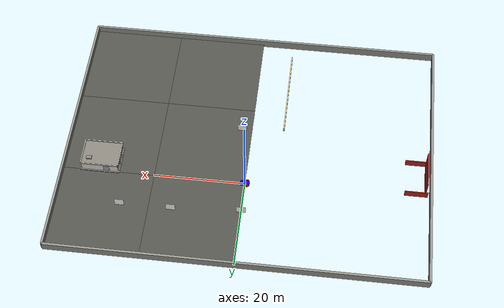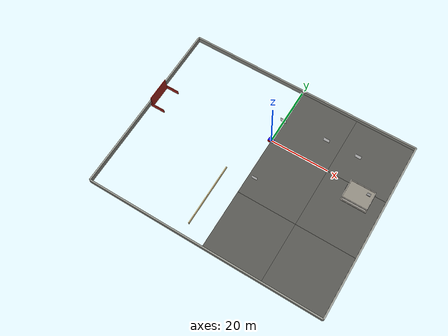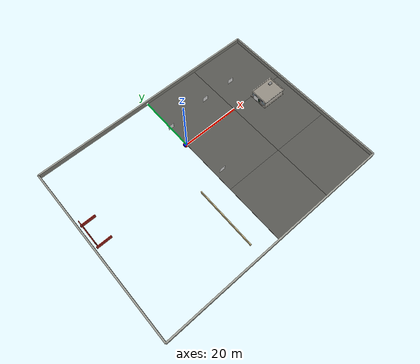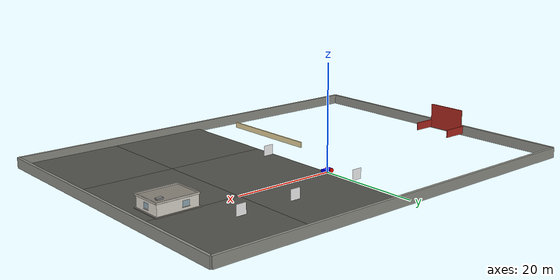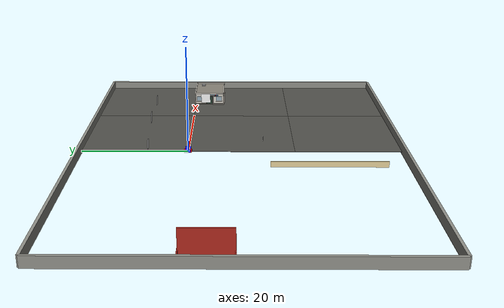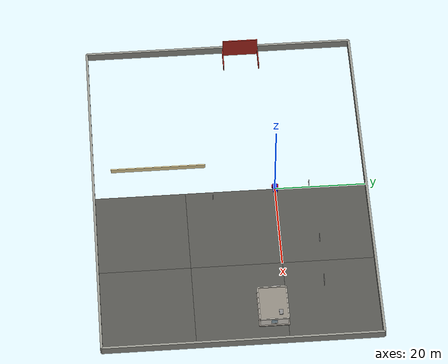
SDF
<sdf version="1.9">
 <world name="default">
  <model name="vehicle_blue" canonical_link="chassis">
   <pose relative_to="world">0.0 0.0 0 0 0 0</pose>
   <frame name="lidar_frame" attached_to="chassis"><pose>0.85 0 0.55 0 0 0</pose></frame>
   <link name="chassis">
    <pose relative_to="__model__">0.0 0.0 0.4 0 0 0</pose>
    <inertial>
     <mass>1.14395</mass>
     <inertia>
      <ixx>0.095329</ixx>
      <ixy>0</ixy>
      <ixz>0</ixz>
      <iyy>0.381317</iyy>
      <iyz>0</iyz>
      <izz>0.476646</izz>
     </inertia>
    </inertial>
    <visual name="visual">
     <geometry><box><size>2.0 1.0 0.5</size></box></geometry>
     <material>
      <ambient>0.0 0.0 1.0 1</ambient>
      <diffuse>0.0 0.0 1.0 1</diffuse>
      <specular>0.0 0.0 1.0 1</specular>
     </material>
    </visual>
    <collision name="collision"><geometry><box><size>2.0 1.0 0.5</size></box></geometry></collision>
    <sensor name="gpu_lidar" type="gpu_lidar">
     <pose relative_to="lidar_frame">0 0 0 0 0 0</pose>
     <topic>scan</topic>
     <update_rate>10</update_rate>
     <ray>
      <scan>
       <horizontal>
        <samples>360</samples>
        <resolution>1</resolution>
        <min_angle>-3.14159</min_angle>
        <max_angle>3.14159</max_angle>
       </horizontal>
       <vertical>
        <samples>1</samples>
        <resolution>0.01</resolution>
        <min_angle>0</min_angle>
        <max_angle>0</max_angle>
       </vertical>
      </scan>
      <range><min>0.08</min><max>30.0</max><resolution>0.01</resolution></range>
     </ray>
     <always_on>1</always_on>
     <visualize>true</visualize>
    </sensor>
    <sensor name="front_cam" type="camera">
     <pose>0.9  0  0.0  0  -0.10  0</pose>
     <update_rate>30</update_rate>
     <camera>
      <horizontal_fov>1.05</horizontal_fov>
      <image><width>1280</width><height>720</height><format>R8G8B8</format></image>
     </camera>
     <always_on>true</always_on>
    </sensor>
    <sensor name="imu_sensor" type="imu">
     <always_on>1</always_on>
     <update_rate>50</update_rate>
     <visualize>true</visualize>
     <topic>imu</topic>
    </sensor>
   </link>
   <link name="left_wheel">
    <pose relative_to="chassis">-0.5 0.6 0 -1.5707 0 0</pose>
    <inertial>
     <mass>1</mass>
     <inertia><ixx>0.043333</ixx><ixy>0</ixy><ixz>0</ixz><iyy>0.043333</iyy><iyz>0</iyz><izz>0.08</izz></inertia>
    </inertial>
    <visual name="visual">
     <geometry><cylinder><radius>0.4</radius><length>0.2</length></cylinder></geometry>
     <material>
      <ambient>1.0 0.0 0.0 1</ambient>
      <diffuse>1.0 0.0 0.0 1</diffuse>
      <specular>1.0 0.0 0.0 1</specular>
     </material>
    </visual>
    <collision name="collision">
     <geometry><cylinder><radius>0.4</radius><length>0.2</length></cylinder></geometry>
    </collision>
   </link>
   <link name="right_wheel">
    <pose relative_to="chassis">-0.5 -0.6 0 -1.5707 0 0</pose>
    <inertial>
     <mass>1</mass>
     <inertia><ixx>0.043333</ixx><ixy>0</ixy><ixz>0</ixz><iyy>0.043333</iyy><iyz>0</iyz><izz>0.08</izz></inertia>
    </inertial>
    <visual name="visual">
     <geometry><cylinder><radius>0.4</radius><length>0.2</length></cylinder></geometry>
     <material>
      <ambient>1.0 0.0 0.0 1</ambient>
      <diffuse>1.0 0.0 0.0 1</diffuse>
      <specular>1.0 0.0 0.0 1</specular>
     </material>
    </visual>
    <collision name="collision">
     <geometry><cylinder><radius>0.4</radius><length>0.2</length></cylinder></geometry>
    </collision>
   </link>
   <frame name="caster_frame" attached_to="chassis"><pose>0.8 0 -0.2 0 0 0</pose></frame>
   <link name="caster">
    <pose relative_to="caster_frame"/>
    <inertial>
     <mass>1</mass>
     <inertia><ixx>0.016</ixx><ixy>0</ixy><ixz>0</ixz><iyy>0.016</iyy><iyz>0</iyz><izz>0.016</izz></inertia>
    </inertial>
    <visual name="visual">
     <geometry><sphere><radius>0.2</radius></sphere></geometry>
     <material>
      <ambient>0.0 1 0.0 1</ambient>
      <diffuse>0.0 1 0.0 1</diffuse>
      <specular>0.0 1 0.0 1</specular>
     </material>
    </visual>
    <collision name="collision"><geometry><sphere><radius>0.2</radius></sphere></geometry></collision>
   </link>
   <joint name="left_wheel_joint" type="revolute">
    <pose relative_to="left_wheel"/>
    <parent>chassis</parent>
    <child>left_wheel</child>
    <axis>
     <xyz expressed_in="__model__">0 1 0</xyz>
     <limit><lower>-1.79769e+308</lower><upper>1.79769e+308</upper></limit>
    </axis>
   </joint>
   <joint name="right_wheel_joint" type="revolute">
    <pose relative_to="right_wheel"/>
    <parent>chassis</parent>
    <child>right_wheel</child>
    <axis>
     <xyz expressed_in="__model__">0 1 0</xyz>
     <limit><lower>-1.79769e+308</lower><upper>1.79769e+308</upper></limit>
    </axis>
   </joint>
   <joint name="caster_wheel" type="ball"><parent>chassis</parent><child>caster</child></joint>
   <plugin filename="gz-sim-diff-drive-system" name="gz::sim::systems::DiffDrive">
    <left_joint>left_wheel_joint</left_joint>
    <right_joint>right_wheel_joint</right_joint>
    <wheel_separation>1.2</wheel_separation>
    <wheel_radius>0.4</wheel_radius>
    <odom_publish_frequency>30.0</odom_publish_frequency>
    <topic>cmd_vel</topic>
    <max_linear_velocity>3.0</max_linear_velocity>
    <max_angular_velocity>3.0</max_angular_velocity>
    <max_linear_acceleration>5.0</max_linear_acceleration>
    <max_angular_acceleration>5.0</max_angular_acceleration>
   </plugin>
   <plugin name="gz::sim::systems::JointStatePublisher" filename="gz-sim-joint-state-publisher-system">
    <publish_rate>50</publish_rate>
   </plugin>
   <plugin filename="ignition-gazebo-sensors-system" name="ignition::gazebo::systems::Sensors">
    <render_engine>ogre2</render_engine>
   </plugin>
  </model>
  <include><name>qr4_house_1</name><uri>model://qr4</uri><pose>0 7.5 1.5 1.5708 0 0</pose></include>
  <include><name>qr5_house_2</name><uri>model://qr5</uri><pose>15 8.5 1.5 1.5708 0 0</pose></include>
  <include><name>qr6_house_3</name><uri>model://qr6</uri><pose>26.0633 8.5 1.5 1.5708 0 0</pose></include>
  <include><name>qr7_fast_food</name><uri>model://qr7</uri><pose>2.2 -14 1.5 -1.5708 0 0</pose></include>
  <include>
   <name>qr10_community_clinic</name>
   <uri>model://qr10</uri>
   <pose>27.5 -2.2 1.5 0 -1.5708 0</pose>
  </include>
  <model name="asphalt_plane">
   <static>1</static>
   <link name="link">
    <collision name="collision"><geometry><box><size>20 20 0.1</size></box></geometry></collision>
    <visual name="visual">
     <cast_shadows>0</cast_shadows>
     <geometry><box><size>20 20 0.1</size></box></geometry>
     <material>
      <ambient>0.18 0.18 0.17 1</ambient>
      <diffuse>0.32 0.32 0.30 1</diffuse>
      <specular>0.05 0.05 0.05 1</specular>
      <emissive>0 0 0 1</emissive>
     </material>
    </visual>
    <velocity_decay><linear>0</linear><angular>0</angular></velocity_decay>
   </link>
   <pose>10 10 0 0 0 0</pose>
  </model>
  <model name="asphalt_plane_0">
   <static>1</static>
   <link name="link">
    <collision name="collision"><geometry><box><size>20 20 0.1</size></box></geometry></collision>
    <visual name="visual">
     <cast_shadows>0</cast_shadows>
     <geometry><box><size>20 20 0.1</size></box></geometry>
     <material>
      <ambient>0.18 0.18 0.17 1</ambient>
      <diffuse>0.32 0.32 0.30 1</diffuse>
      <specular>0.05 0.05 0.05 1</specular>
      <emissive>0 0 0 1</emissive>
     </material>
    </visual>
    <velocity_decay><linear>0</linear><angular>0</angular></velocity_decay>
   </link>
   <pose>10 -10 0 0 0 0</pose>
  </model>
  <model name="asphalt_plane_4">
   <static>1</static>
   <link name="link">
    <collision name="collision"><geometry><box><size>20 20 0.1</size></box></geometry></collision>
    <visual name="visual">
     <cast_shadows>0</cast_shadows>
     <geometry><box><size>20 20 0.1</size></box></geometry>
     <material>
      <ambient>0.18 0.18 0.17 1</ambient>
      <diffuse>0.32 0.32 0.30 1</diffuse>
      <specular>0.05 0.05 0.05 1</specular>
      <emissive>0 0 0 1</emissive>
     </material>
    </visual>
    <velocity_decay><linear>0</linear><angular>0</angular></velocity_decay>
   </link>
   <pose>10 -30 0 0 0 0</pose>
  </model>
  <model name="asphalt_plane_5">
   <static>1</static>
   <link name="link">
    <collision name="collision"><geometry><box><size>20 20 0.1</size></box></geometry></collision>
    <visual name="visual">
     <cast_shadows>0</cast_shadows>
     <geometry><box><size>20 20 0.1</size></box></geometry>
     <material>
      <ambient>0.18 0.18 0.17 1</ambient>
      <diffuse>0.32 0.32 0.30 1</diffuse>
      <specular>0.05 0.05 0.05 1</specular>
      <emissive>0 0 0 1</emissive>
     </material>
    </visual>
    <velocity_decay><linear>0</linear><angular>0</angular></velocity_decay>
   </link>
   <pose>30 -30 0 0 0 0</pose>
  </model>
  <model name="asphalt_plane_6">
   <static>1</static>
   <link name="link">
    <collision name="collision"><geometry><box><size>20 20 0.1</size></box></geometry></collision>
    <visual name="visual">
     <cast_shadows>0</cast_shadows>
     <geometry><box><size>20 20 0.1</size></box></geometry>
     <material>
      <ambient>0.18 0.18 0.17 1</ambient>
      <diffuse>0.32 0.32 0.30 1</diffuse>
      <specular>0.05 0.05 0.05 1</specular>
      <emissive>0 0 0 1</emissive>
     </material>
    </visual>
    <velocity_decay><linear>0</linear><angular>0</angular></velocity_decay>
   </link>
   <pose>30 10 0 0 0 0</pose>
  </model>
  <model name="asphalt_plane_7">
   <static>1</static>
   <link name="link">
    <collision name="collision"><geometry><box><size>20 20 0.1</size></box></geometry></collision>
    <visual name="visual">
     <cast_shadows>0</cast_shadows>
     <geometry><box><size>20 20 0.1</size></box></geometry>
     <material>
      <ambient>0.18 0.18 0.17 1</ambient>
      <diffuse>0.32 0.32 0.30 1</diffuse>
      <specular>0.05 0.05 0.05 1</specular>
      <emissive>0 0 0 1</emissive>
     </material>
    </visual>
    <velocity_decay><linear>0</linear><angular>0</angular></velocity_decay>
   </link>
   <pose>30 -10 0 0 0 0</pose>
  </model>
  <model name="Docking Station Wall">
   <static>1</static>
   <link name="link">
    <collision name="collision">
     <pose>-39 -5 2.55 0 0 0</pose>
     <geometry><box><size>0.2 8 5.0</size></box></geometry>
    </collision>
    <collision name="left_side_wall_collision">
     <pose>-37 -1 0.85 0 0 0</pose>
     <geometry><box><size>5.0 0.2 1.6</size></box></geometry>
    </collision>
    <collision name="right_side_wall_collision">
     <pose>-37 -9 0.85 0 0 0</pose>
     <geometry><box><size>5.0 0.2 1.6</size></box></geometry>
    </collision>
    <visual name="visual">
     <pose>-39 -5 2.55 0 0 0</pose>
     <geometry><box><size>0.2 8 5.0</size></box></geometry>
     <material>
      <ambient>0.35 0.08 0.06 1</ambient>
      <diffuse>0.70 0.16 0.12 1</diffuse>
      <specular>0.10 0.04 0.03 1</specular>
      <emissive>0 0 0 1</emissive>
     </material>
    </visual>
    <visual name="left_side_wall_visual">
     <pose>-37 -1 0.85 0 0 0</pose>
     <geometry><box><size>5.0 0.2 1.6</size></box></geometry>
     <material>
      <ambient>0.35 0.08 0.06 1</ambient>
      <diffuse>0.70 0.16 0.12 1</diffuse>
      <specular>0.10 0.04 0.03 1</specular>
      <emissive>0 0 0 1</emissive>
     </material>
    </visual>
    <visual name="right_side_wall_visual">
     <pose>-37 -9 0.85 0 0 0</pose>
     <geometry><box><size>5.0 0.2 1.6</size></box></geometry>
     <material>
      <ambient>0.35 0.08 0.06 1</ambient>
      <diffuse>0.70 0.16 0.12 1</diffuse>
      <specular>0.10 0.04 0.03 1</specular>
      <emissive>0 0 0 1</emissive>
     </material>
    </visual>
   </link>
  </model>
  <model name="boundary_walls">
   <static>1</static>
   <link name="link">
    <collision name="north_wall_collision">
     <pose>0 20.25 0.55 0 0 0</pose>
     <geometry><box><size>80.5 0.5 2.0</size></box></geometry>
    </collision>
    <collision name="south_wall_collision">
     <pose>0 -40.25 0.55 0 0 0</pose>
     <geometry><box><size>80.5 0.5 2.0</size></box></geometry>
    </collision>
    <collision name="east_wall_collision">
     <pose>40.25 -10 0.55 0 0 0</pose>
     <geometry><box><size>0.5 60.5 2.0</size></box></geometry>
    </collision>
    <collision name="west_wall_collision">
     <pose>-40.25 -10 0.55 0 0 0</pose>
     <geometry><box><size>0.5 60.5 2.0</size></box></geometry>
    </collision>
    <visual name="north_wall_visual">
     <pose>0 20.25 0.55 0 0 0</pose>
     <geometry><box><size>80.5 0.5 2.0</size></box></geometry>
     <material>
      <ambient>0.35 0.35 0.33 1</ambient>
      <diffuse>0.58 0.58 0.55 1</diffuse>
      <specular>0.08 0.08 0.08 1</specular>
      <emissive>0 0 0 1</emissive>
     </material>
    </visual>
    <visual name="south_wall_visual">
     <pose>0 -40.25 0.55 0 0 0</pose>
     <geometry><box><size>80.5 0.5 2.0</size></box></geometry>
     <material>
      <ambient>0.35 0.35 0.33 1</ambient>
      <diffuse>0.58 0.58 0.55 1</diffuse>
      <specular>0.08 0.08 0.08 1</specular>
      <emissive>0 0 0 1</emissive>
     </material>
    </visual>
    <visual name="east_wall_visual">
     <pose>40.25 -10 0.55 0 0 0</pose>
     <geometry><box><size>0.5 60.5 2.0</size></box></geometry>
     <material>
      <ambient>0.35 0.35 0.33 1</ambient>
      <diffuse>0.58 0.58 0.55 1</diffuse>
      <specular>0.08 0.08 0.08 1</specular>
      <emissive>0 0 0 1</emissive>
     </material>
    </visual>
    <visual name="west_wall_visual">
     <pose>-40.25 -10 0.55 0 0 0</pose>
     <geometry><box><size>0.5 60.5 2.0</size></box></geometry>
     <material>
      <ambient>0.35 0.35 0.33 1</ambient>
      <diffuse>0.58 0.58 0.55 1</diffuse>
      <specular>0.08 0.08 0.08 1</specular>
      <emissive>0 0 0 1</emissive>
     </material>
    </visual>
   </link>
  </model>
  <model name="gas_station_east_wall">
   <static>1</static>
   <pose>-7.0967 -25.64435 0.55 0 0 0</pose>
   <link name="link">
    <collision name="east_wall_collision">
     <geometry><box><size>0.25 21.0545 1.1</size></box></geometry>
    </collision>
    <visual name="east_wall_visual">
     <geometry><box><size>0.25 21.0545 1.1</size></box></geometry>
     <material>
      <ambient>0.46 0.42 0.32 1</ambient>
      <diffuse>0.92 0.84 0.62 1</diffuse>
      <specular>0.36 0.34 0.25 1</specular>
      <emissive>0.02 0.01 0 1</emissive>
     </material>
    </visual>
   </link>
  </model>
  <model name="community_clinic">
   <static>true</static>
   <pose>32.0 -3.0 0 0 0 3.14159</pose>
   <link name="clinic_link">
    <visual name="foundation_visual">
     <pose>0 0 0.1 0 0 0</pose>
     <geometry><box><size>8.6 6.6 0.2</size></box></geometry>
     <material>
      <ambient>0.45 0.43 0.40 1</ambient>
      <diffuse>0.50 0.48 0.45 1</diffuse>
      <specular>0.05 0.05 0.05 1</specular>
     </material>
    </visual>
    <collision name="foundation_collision">
     <pose>0 0 0.1 0 0 0</pose>
     <geometry><box><size>8.6 6.6 0.2</size></box></geometry>
    </collision>
    <visual name="building_visual">
     <pose>0 0 1.2 0 0 0</pose>
     <geometry><box><size>8.0 6.0 2.2</size></box></geometry>
     <material>
      <ambient>0.88 0.86 0.82 1</ambient>
      <diffuse>0.90 0.88 0.84 1</diffuse>
      <specular>0.04 0.04 0.04 1</specular>
     </material>
    </visual>
    <collision name="building_collision">
     <pose>0 0 1.2 0 0 0</pose>
     <geometry><box><size>8.0 6.0 2.2</size></box></geometry>
    </collision>
    <visual name="parapet_front">
     <pose>0 3.1 2.45 0 0 0</pose>
     <geometry><box><size>8.2 0.2 0.3</size></box></geometry>
     <material><ambient>0.80 0.78 0.74 1</ambient><diffuse>0.82 0.80 0.76 1</diffuse></material>
    </visual>
    <visual name="parapet_back">
     <pose>0 -3.1 2.45 0 0 0</pose>
     <geometry><box><size>8.2 0.2 0.3</size></box></geometry>
     <material><ambient>0.80 0.78 0.74 1</ambient><diffuse>0.82 0.80 0.76 1</diffuse></material>
    </visual>
    <visual name="parapet_left">
     <pose>-4.1 0 2.45 0 0 0</pose>
     <geometry><box><size>0.2 6.2 0.3</size></box></geometry>
     <material><ambient>0.80 0.78 0.74 1</ambient><diffuse>0.82 0.80 0.76 1</diffuse></material>
    </visual>
    <visual name="parapet_right">
     <pose>4.1 0 2.45 0 0 0</pose>
     <geometry><box><size>0.2 6.2 0.3</size></box></geometry>
     <material><ambient>0.80 0.78 0.74 1</ambient><diffuse>0.82 0.80 0.76 1</diffuse></material>
    </visual>
    <visual name="roof_slab">
     <pose>0 0 2.32 0 0 0</pose>
     <geometry><box><size>8.2 6.2 0.14</size></box></geometry>
     <material><ambient>0.52 0.50 0.46 1</ambient><diffuse>0.54 0.52 0.48 1</diffuse></material>
    </visual>
    <visual name="canopy_slab">
     <pose>3.6 0 2.05 0 0 0</pose>
     <geometry><box><size>1.2 2.4 0.12</size></box></geometry>
     <material><ambient>0.75 0.73 0.70 1</ambient><diffuse>0.77 0.75 0.72 1</diffuse></material>
    </visual>
    <visual name="canopy_pillar_left">
     <pose>4.05 0.85 1.05 0 0 0</pose>
     <geometry><box><size>0.15 0.15 2.1</size></box></geometry>
     <material><ambient>0.82 0.80 0.77 1</ambient><diffuse>0.84 0.82 0.79 1</diffuse></material>
    </visual>
    <visual name="canopy_pillar_right">
     <pose>4.05 -0.85 1.05 0 0 0</pose>
     <geometry><box><size>0.15 0.15 2.1</size></box></geometry>
     <material><ambient>0.82 0.80 0.77 1</ambient><diffuse>0.84 0.82 0.79 1</diffuse></material>
    </visual>
    <visual name="door_frame">
     <pose>4.02 0 1.0 0 0 0</pose>
     <geometry><box><size>0.06 1.5 2.05</size></box></geometry>
     <material><ambient>0.20 0.18 0.16 1</ambient><diffuse>0.22 0.20 0.18 1</diffuse></material>
    </visual>
    <visual name="door_left">
     <pose>4.04 0.30 0.95 0 0 0</pose>
     <geometry><box><size>0.05 0.62 1.90</size></box></geometry>
     <material><ambient>0.14 0.26 0.20 1</ambient><diffuse>0.16 0.28 0.22 1</diffuse></material>
    </visual>
    <visual name="door_right">
     <pose>4.04 -0.30 0.95 0 0 0</pose>
     <geometry><box><size>0.05 0.62 1.90</size></box></geometry>
     <material><ambient>0.14 0.26 0.20 1</ambient><diffuse>0.16 0.28 0.22 1</diffuse></material>
    </visual>
    <visual name="door_transom">
     <pose>4.04 0 1.97 0 0 0</pose>
     <geometry><box><size>0.04 1.30 0.20</size></box></geometry>
     <material><ambient>0.55 0.70 0.75 0.65</ambient><diffuse>0.55 0.70 0.75 0.65</diffuse></material>
    </visual>
    <visual name="fw1_glass">
     <pose>4.02 2.10 1.30 0 0 0</pose>
     <geometry><box><size>0.04 1.30 1.00</size></box></geometry>
     <material><ambient>0.42 0.60 0.72 0.55</ambient><diffuse>0.42 0.60 0.72 0.55</diffuse></material>
    </visual>
    <visual name="fw1_frame_top">
     <pose>4.04 2.10 1.86 0 0 0</pose>
     <geometry><box><size>0.05 1.36 0.06</size></box></geometry>
     <material><ambient>0.92 0.92 0.90 1</ambient><diffuse>0.94 0.94 0.92 1</diffuse></material>
    </visual>
    <visual name="fw1_frame_bot">
     <pose>4.04 2.10 0.76 0 0 0</pose>
     <geometry><box><size>0.05 1.36 0.06</size></box></geometry>
     <material><ambient>0.92 0.92 0.90 1</ambient><diffuse>0.94 0.94 0.92 1</diffuse></material>
    </visual>
    <visual name="fw1_sill">
     <pose>4.06 2.10 0.71 0 0 0</pose>
     <geometry><box><size>0.12 1.50 0.05</size></box></geometry>
     <material><ambient>0.80 0.78 0.75 1</ambient><diffuse>0.82 0.80 0.77 1</diffuse></material>
    </visual>
    <visual name="fw2_glass">
     <pose>4.02 -2.10 1.30 0 0 0</pose>
     <geometry><box><size>0.04 1.30 1.00</size></box></geometry>
     <material><ambient>0.42 0.60 0.72 0.55</ambient><diffuse>0.42 0.60 0.72 0.55</diffuse></material>
    </visual>
    <visual name="fw2_frame_top">
     <pose>4.04 -2.10 1.86 0 0 0</pose>
     <geometry><box><size>0.05 1.36 0.06</size></box></geometry>
     <material><ambient>0.92 0.92 0.90 1</ambient><diffuse>0.94 0.94 0.92 1</diffuse></material>
    </visual>
    <visual name="fw2_frame_bot">
     <pose>4.04 -2.10 0.76 0 0 0</pose>
     <geometry><box><size>0.05 1.36 0.06</size></box></geometry>
     <material><ambient>0.92 0.92 0.90 1</ambient><diffuse>0.94 0.94 0.92 1</diffuse></material>
    </visual>
    <visual name="fw2_sill">
     <pose>4.06 -2.10 0.71 0 0 0</pose>
     <geometry><box><size>0.12 1.50 0.05</size></box></geometry>
     <material><ambient>0.80 0.78 0.75 1</ambient><diffuse>0.82 0.80 0.77 1</diffuse></material>
    </visual>
    <visual name="bw1_glass">
     <pose>1.5 -3.03 1.30 0 0 0</pose>
     <geometry><box><size>1.30 0.04 1.00</size></box></geometry>
     <material><ambient>0.42 0.60 0.72 0.55</ambient><diffuse>0.42 0.60 0.72 0.55</diffuse></material>
    </visual>
    <visual name="bw1_sill">
     <pose>1.5 -3.06 0.71 0 0 0</pose>
     <geometry><box><size>1.50 0.12 0.05</size></box></geometry>
     <material><ambient>0.80 0.78 0.75 1</ambient><diffuse>0.82 0.80 0.77 1</diffuse></material>
    </visual>
    <visual name="lw1_glass">
     <pose>-4.03 0 1.30 0 0 0</pose>
     <geometry><box><size>0.04 1.30 1.00</size></box></geometry>
     <material><ambient>0.42 0.60 0.72 0.55</ambient><diffuse>0.42 0.60 0.72 0.55</diffuse></material>
    </visual>
    <visual name="lw1_sill">
     <pose>-4.06 0 0.71 0 0 0</pose>
     <geometry><box><size>0.12 1.50 0.05</size></box></geometry>
     <material><ambient>0.80 0.78 0.75 1</ambient><diffuse>0.82 0.80 0.77 1</diffuse></material>
    </visual>
    <visual name="sign_bracket">
     <pose>4.05 0 2.10 0 0 0</pose>
     <geometry><box><size>0.06 3.8 0.55</size></box></geometry>
     <material><ambient>0.30 0.32 0.34 1</ambient><diffuse>0.32 0.34 0.36 1</diffuse></material>
    </visual>
    <visual name="sign_face">
     <pose>4.08 0 2.10 0 0 0</pose>
     <geometry><box><size>0.04 3.6 0.45</size></box></geometry>
     <material><ambient>0.18 0.45 0.65 1</ambient><diffuse>0.20 0.48 0.68 1</diffuse></material>
    </visual>
    <visual name="cross_h">
     <pose>4.10 1.40 2.10 0 0 0</pose>
     <geometry><box><size>0.02 0.36 0.12</size></box></geometry>
     <material><ambient>0.85 0.10 0.10 1</ambient><diffuse>0.88 0.12 0.12 1</diffuse></material>
    </visual>
    <visual name="cross_v">
     <pose>4.10 1.40 2.10 0 0 0</pose>
     <geometry><box><size>0.02 0.12 0.36</size></box></geometry>
     <material><ambient>0.85 0.10 0.10 1</ambient><diffuse>0.88 0.12 0.12 1</diffuse></material>
    </visual>
    <visual name="hvac_body">
     <pose>-2.5 -1.5 2.55 0 0 0</pose>
     <geometry><box><size>1.2 0.8 0.30</size></box></geometry>
     <material><ambient>0.48 0.48 0.48 1</ambient><diffuse>0.52 0.52 0.52 1</diffuse></material>
    </visual>
    <inertial>
     <mass>5000</mass>
     <inertia><ixx>1000</ixx><ixy>0</ixy><ixz>0</ixz><iyy>1000</iyy><iyz>0</iyz><izz>1000</izz></inertia>
    </inertial>
   </link>
  </model>
 </world>
</sdf>
